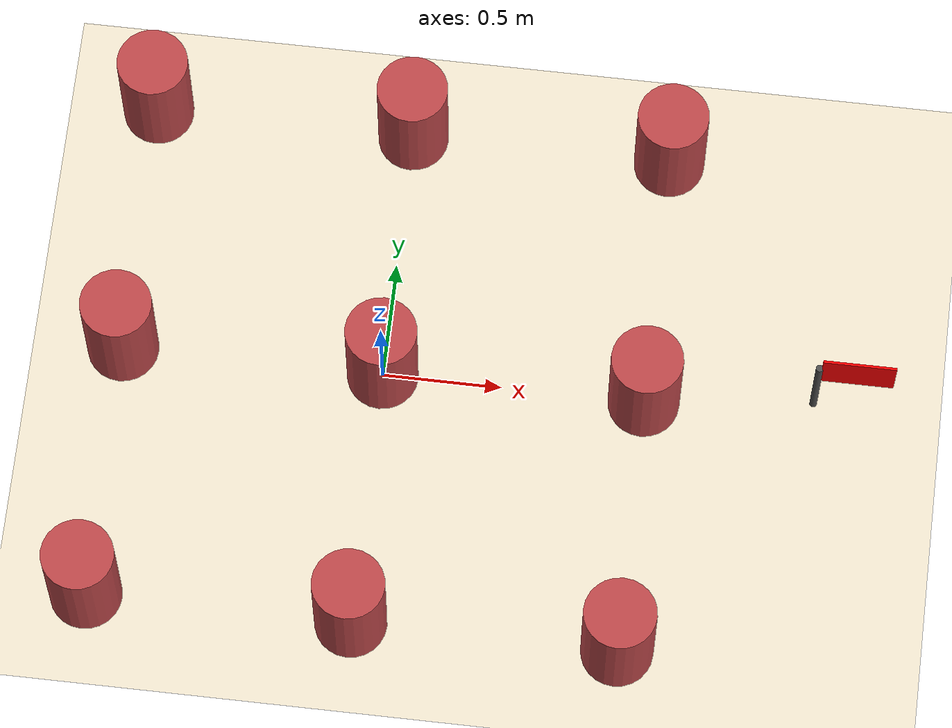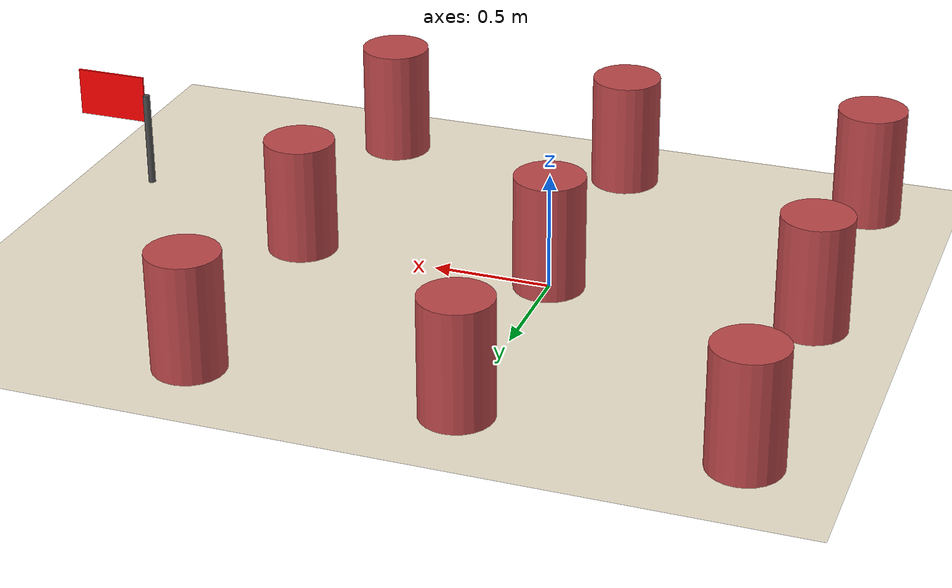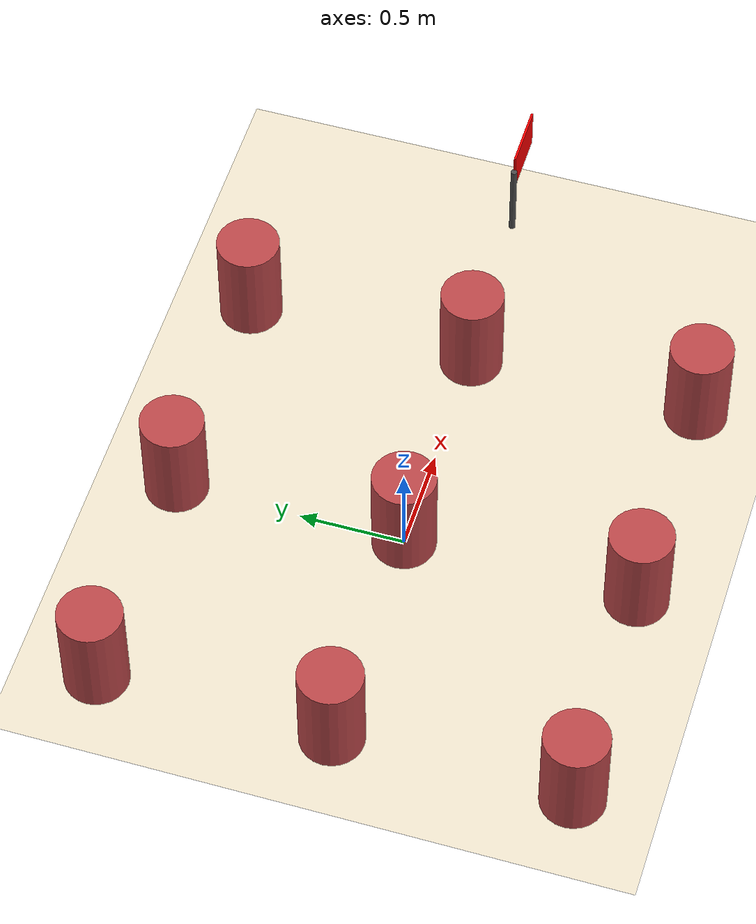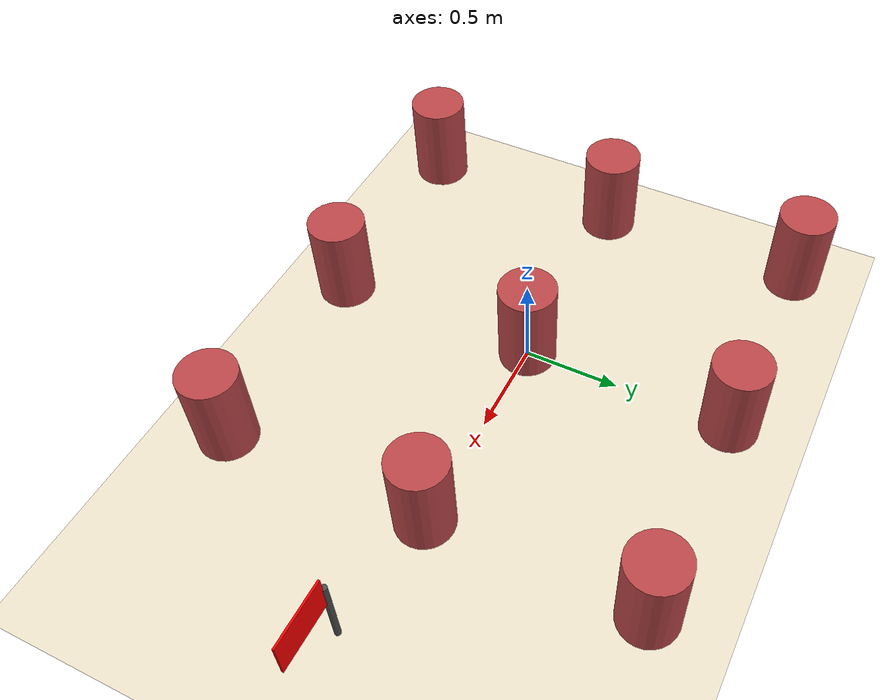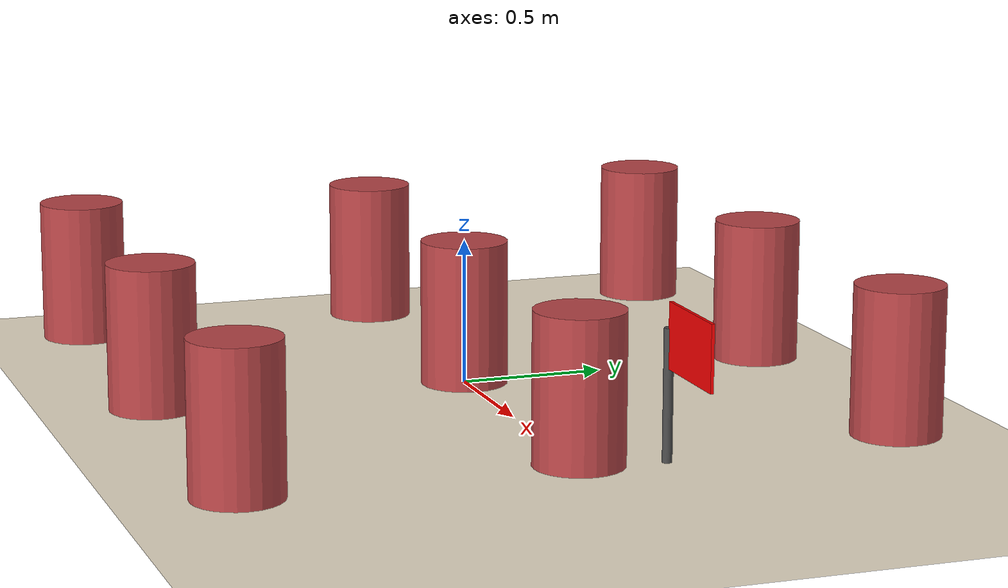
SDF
<sdf version="1.8">
 <world name="arena">
  <physics name="1ms" type="ignored">
   <max_step_size>0.001</max_step_size>
   <real_time_factor>1</real_time_factor>
   <real_time_update_rate>1000</real_time_update_rate>
  </physics>
  <plugin name="ignition::gazebo::systems::Physics" filename="ignition-gazebo-physics-system"/>
  <plugin name="ignition::gazebo::systems::UserCommands" filename="ignition-gazebo-user-commands-system"/>
  <plugin name="ignition::gazebo::systems::SceneBroadcaster" filename="ignition-gazebo-scene-broadcaster-system"/>
  <plugin filename="ignition-gazebo-sensors-system" name="ignition::gazebo::systems::Sensors">
   <render_engine>ogre2</render_engine>
  </plugin>
  <plugin filename="libignition-gazebo-contact-system.so" name="ignition::gazebo::systems::Contact"/>
  <scene><ambient>1.0 1.0 1.0</ambient><background>0.8 0.8 0.8</background></scene>
  <light type="directional" name="sun">
   <pose>0 0 10 0 0 0</pose>
   <diffuse>0.8 0.8 0.8 1</diffuse>
   <specular>0.2 0.2 0.2 1</specular>
   <attenuation>
    <range>1000</range>
    <constant>0.9</constant>
    <linear>0.01</linear>
    <quadratic>0.001</quadratic>
   </attenuation>
   <direction>-0.5 0.1 -0.9</direction>
  </light>
  <model name="ground_plane">
   <static>true</static>
   <link name="link">
    <collision name="collision">
     <geometry><plane><normal>0 0 1</normal><size>100 100</size></plane></geometry>
    </collision>
    <visual name="visual">
     <geometry><plane><normal>0 0 1</normal><size>100 100</size></plane></geometry>
     <material>
      <ambient>0.94 0.90 0.81 1</ambient>
      <diffuse>0.94 0.90 0.81 1</diffuse>
      <specular>1 1 1 0</specular>
     </material>
    </visual>
   </link>
   <plugin name="ignition::gazebo::systems::Label" filename="ignition-gazebo-label-system">
    <label>10</label>
   </plugin>
  </model>
  <model name="sky_cam">
   <static>true</static>
   <link name="camera_link">
    <pose>0 0 10 1.57 1.57 0</pose>
    <sensor name="sky_cam" type="camera">
     <camera>
      <horizontal_fov>1.047</horizontal_fov>
      <image><width>1024</width><height>768</height></image>
      <clip><near>0.1</near><far>100</far></clip>
     </camera>
     <always_on>1</always_on>
     <update_rate>1</update_rate>
     <visualize>true</visualize>
     <topic>sky_cam</topic>
    </sensor>
   </link>
  </model>
  <include>
   <uri>ObstaculosArenaV1</uri>
   <plugin name="ignition::gazebo::systems::Label" filename="ignition-gazebo-label-system">
    <label>30</label>
   </plugin>
  </include>
  <model name="flag">
   <static>false</static>
   <link name="flag_link">
    <pose>1.8 0 0.2 0 0 0</pose>
    <visual name="pole_visual">
     <pose>0 0 0.2 0 0 0</pose>
     <geometry><cylinder><radius>0.015</radius><length>0.4</length></cylinder></geometry>
     <material><ambient>0.2 0.2 0.2 1</ambient><diffuse>0.3 0.3 0.3 1</diffuse></material>
    </visual>
    <visual name="flag_panel_visual">
     <pose>0.16 0 0.38 0 0 0</pose>
     <geometry><box><size>0.3 0.01 0.2</size></box></geometry>
     <material><ambient>0.8 0 0 1</ambient><diffuse>1 0 0 1</diffuse></material>
    </visual>
    <collision name="flag_collision">
     <pose>0.08 0 0.2 0 0 0</pose>
     <geometry><box><size>0.35 0.02 0.4</size></box></geometry>
    </collision>
    <inertial><mass>0.1</mass><inertia><ixx>0.001</ixx><iyy>0.001</iyy><izz>0.001</izz></inertia></inertial>
   </link>
   <plugin filename="ignition-gazebo-label-system" name="ignition::gazebo::systems::Label">
    <label>40</label>
   </plugin>
  </model>
 </world>
</sdf>

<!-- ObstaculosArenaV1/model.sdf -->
<sdf version='1.5'>

    <model name='obstaculos_arena_v1'>
      <static>true</static>

      <link name='obstaculos'>

        <collision name='one_one'>
          <pose>-1.1 -1.1 0.25 0 0 0</pose>
          <geometry>
            <cylinder>
              <radius>0.15</radius>
              <length>0.5</length>
            </cylinder>
          </geometry>
          <max_contacts>10</max_contacts>
          <surface>
            <bounce/>
            <friction>
              <ode/>
            </friction>
            <contact>
              <ode/>
            </contact>
          </surface>
        </collision>

        <visual name='one_one'>
          <pose>-1.1 -1.1 0.25 0 0 0</pose>
          <geometry>
            <cylinder>
              <radius>0.15</radius>
              <length>0.5</length>
            </cylinder>
          </geometry>
          <material>
            <ambient>.74 .28 .29 1</ambient>
            <diffuse>.74 .28 .29 1</diffuse>
            <specular>1 1 1 1</specular>
          </material>
        </visual>

        <collision name='one_two'>
          <pose>-1.1 0 0.25 0 0 0</pose>
          <geometry>
            <cylinder>
              <radius>0.15</radius>
              <length>0.5</length>
            </cylinder>
          </geometry>
          <max_contacts>10</max_contacts>
          <surface>
            <bounce/>
            <friction>
              <ode/>
            </friction>
            <contact>
              <ode/>
            </contact>
          </surface>
        </collision>

        <visual name='one_two'>
          <pose>-1.1 0 0.25 0 0 0</pose>
          <geometry>
            <cylinder>
              <radius>0.15</radius>
              <length>0.5</length>
            </cylinder>
          </geometry>
          <material>
            <ambient>.74 .28 .29 1</ambient>
            <diffuse>.74 .28 .29 1</diffuse>
            <specular>1 1 1 1</specular>
          </material>
        </visual>

        <collision name='one_three'>
          <pose>-1.1 1.1 0.25 0 0 0</pose>
          <geometry>
            <cylinder>
              <radius>0.15</radius>
              <length>0.5</length>
            </cylinder>
          </geometry>
          <max_contacts>10</max_contacts>
          <surface>
            <bounce/>
            <friction>
              <ode/>
            </friction>
            <contact>
              <ode/>
            </contact>
          </surface>
        </collision>

        <visual name='one_three'>
          <pose>-1.1 1.1 0.25 0 0 0</pose>
          <geometry>
            <cylinder>
              <radius>0.15</radius>
              <length>0.5</length>
            </cylinder>
          </geometry>
          <material>
            <ambient>.74 .28 .29 1</ambient>
            <diffuse>.74 .28 .29 1</diffuse>
            <specular>1 1 1 1</specular>
          </material>
        </visual>

        <collision name='two_one'>
          <pose>0 -1.1 0.25 0 0 0</pose>
          <geometry>
            <cylinder>
              <radius>0.15</radius>
              <length>0.5</length>
            </cylinder>
          </geometry>
          <max_contacts>10</max_contacts>
          <surface>
            <bounce/>
            <friction>
              <ode/>
            </friction>
            <contact>
              <ode/>
            </contact>
          </surface>
        </collision>

        <visual name='two_one'>
          <pose>0 -1.1 0.25 0 0 0</pose>
          <geometry>
            <cylinder>
              <radius>0.15</radius>
              <length>0.5</length>
            </cylinder>
          </geometry>
          <material>
            <ambient>.74 .28 .29 1</ambient>
            <diffuse>.74 .28 .29 1</diffuse>
            <specular>1 1 1 1</specular>
          </material>
        </visual>

        <collision name='two_two'>
          <pose>0 0 0.25 0 0 0</pose>
          <geometry>
            <cylinder>
              <radius>0.15</radius>
              <length>0.5</length>
            </cylinder>
          </geometry>
          <max_contacts>10</max_contacts>
          <surface>
            <bounce/>
            <friction>
              <ode/>
            </friction>
            <contact>
              <ode/>
            </contact>
          </surface>
        </collision>

        <visual name='two_two'>
          <pose>0 0 0.25 0 0 0</pose>
          <geometry>
            <cylinder>
              <radius>0.15</radius>
              <length>0.5</length>
            </cylinder>
          </geometry>
          <material>
            <ambient>.74 .28 .29 1</ambient>
            <diffuse>.74 .28 .29 1</diffuse>
            <specular>1 1 1 1</specular>
          </material>
        </visual>

        <collision name='two_three'>
          <pose>0 1.1 0.25 0 0 0</pose>
          <geometry>
            <cylinder>
              <radius>0.15</radius>
              <length>0.5</length>
            </cylinder>
          </geometry>
          <max_contacts>10</max_contacts>
          <surface>
            <bounce/>
            <friction>
              <ode/>
            </friction>
            <contact>
              <ode/>
            </contact>
          </surface>
        </collision>

        <visual name='two_three'>
          <pose>0 1.1 0.25 0 0 0</pose>
          <geometry>
            <cylinder>
              <radius>0.15</radius>
              <length>0.5</length>
            </cylinder>
          </geometry>
          <material>
            <ambient>.74 .28 .29 1</ambient>
            <diffuse>.74 .28 .29 1</diffuse>
            <specular>1 1 1 1</specular>
          </material>
        </visual>

        <collision name='three_one'>
          <pose>1.1 -1.1 0.25 0 0 0</pose>
          <geometry>
            <cylinder>
              <radius>0.15</radius>
              <length>0.5</length>
            </cylinder>
          </geometry>
          <max_contacts>10</max_contacts>
          <surface>
            <bounce/>
            <friction>
              <ode/>
            </friction>
            <contact>
              <ode/>
            </contact>
          </surface>
        </collision>

        <visual name='three_one'>
          <pose>1.1 -1.1 0.25 0 0 0</pose>
          <geometry>
            <cylinder>
              <radius>0.15</radius>
              <length>0.5</length>
            </cylinder>
          </geometry>
          <material>
            <ambient>.74 .28 .29 1</ambient>
            <diffuse>.74 .28 .29 1</diffuse>
            <specular>1 1 1 1</specular>
          </material>
        </visual>

        <collision name='three_two'>
          <pose>1.1 0 0.25 0 0 0</pose>
          <geometry>
            <cylinder>
              <radius>0.15</radius>
              <length>0.5</length>
            </cylinder>
          </geometry>
          <max_contacts>10</max_contacts>
          <surface>
            <bounce/>
            <friction>
              <ode/>
            </friction>
            <contact>
              <ode/>
            </contact>
          </surface>
        </collision>

        <visual name='three_two'>
          <pose>1.1 0 0.25 0 0 0</pose>
          <geometry>
            <cylinder>
              <radius>0.15</radius>
              <length>0.5</length>
            </cylinder>
          </geometry>
          <material>
            <ambient>.74 .28 .29 1</ambient>
            <diffuse>.74 .28 .29 1</diffuse>
            <specular>1 1 1 1</specular>
          </material>
        </visual>

        <collision name='three_three'>
          <pose>1.1 1.1 0.25 0 0 0</pose>
          <geometry>
            <cylinder>
              <radius>0.15</radius>
              <length>0.5</length>
            </cylinder>
          </geometry>
          <max_contacts>10</max_contacts>
          <surface>
            <bounce/>
            <friction>
              <ode/>
            </friction>
            <contact>
              <ode/>
            </contact>
          </surface>
        </collision>

        <visual name='three_three'>
          <pose>1.1 1.1 0.25 0 0 0</pose>
          <geometry>
            <cylinder>
              <radius>0.15</radius>
              <length>0.5</length>
            </cylinder>
          </geometry>
          <material>
            <ambient>.74 .28 .29 1</ambient>
            <diffuse>.74 .28 .29 1</diffuse>
            <specular>1 1 1 1</specular>
          </material>
        </visual>
      </link>

    </model>
</sdf>
